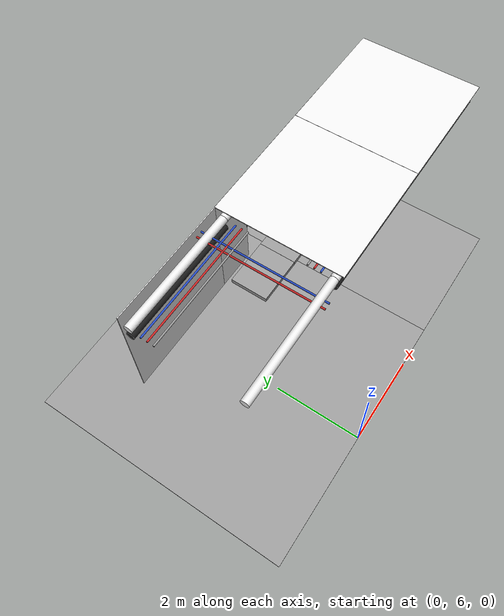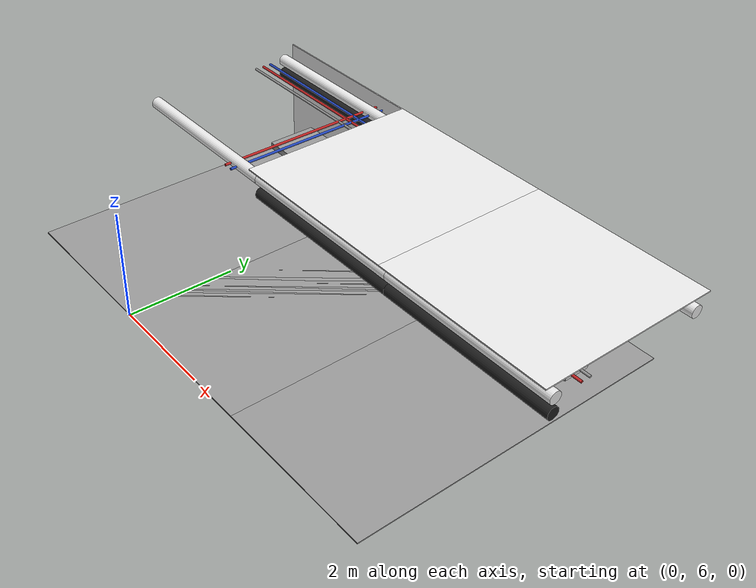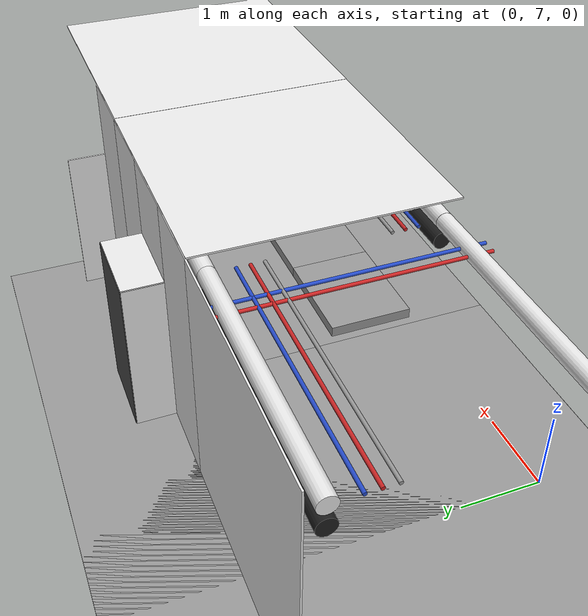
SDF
<sdf version="1.6">
 <world name="default">
  <model name="wall_front_0_3_0_2">
   <static>1</static>
   <pose>0.0 10.5 1.5 0.0 0.0 0.0</pose>
   <link name="link">
    <collision name="collision"><geometry><box><size>3.0 0.02 3.0</size></box></geometry></collision>
    <visual name="visual">
     <material>
      <script><name>Gazebo/White</name><uri>file://media/materials/scripts/gazebo.material</uri></script>
     </material>
     <geometry><box><size>3.0 0.02 3.0</size></box></geometry>
    </visual>
   </link>
  </model>
  <model name="ceiling_1_0_3_1_2">
   <pose>1.0 9.0 2.55 0.0 0.0 1.57</pose>
   <link name="link_1">
    <visual name="visual">
     <geometry><box><size>0.8 1 0.1</size></box></geometry>
     <material>
      <script><uri>file://media/materials/scripts/gazebo.material</uri><name>Gazebo/Grey</name></script>
     </material>
    </visual>
    <collision name="collision"><geometry><box><size>0.8 1 0.1</size></box></geometry></collision>
   </link>
   <static>1</static>
  </model>
  <model name="red_pipe_right_0_3_0_2">
   <static>1</static>
   <pose>0.0 9.0 2.76 0.0 0.0 0.0</pose>
   <link name="link_0">
    <visual name="visual">
     <pose>0.85 0 0 1.57 0 0</pose>
     <geometry><cylinder><radius>0.02</radius><length>3.0</length></cylinder></geometry>
     <material>
      <script><uri>file://media/materials/scripts/gazebo.material</uri><name>Gazebo/Red</name></script>
     </material>
    </visual>
    <collision name="collision">
     <pose>0.85 0 0 1.57 0 0</pose>
     <geometry><cylinder><radius>0.02</radius><length>3.0</length></cylinder></geometry>
    </collision>
   </link>
  </model>
  <model name="blue_pipe_right_0_3_0_2">
   <static>1</static>
   <pose>0.0 9.0 2.76 0.0 0.0 0.0</pose>
   <link name="link_0">
    <visual name="visual">
     <pose>1 0 0 1.57 0 0</pose>
     <geometry><cylinder><radius>0.02</radius><length>3.0</length></cylinder></geometry>
     <material>
      <script><uri>file://media/materials/scripts/gazebo.material</uri><name>Gazebo/Blue</name></script>
     </material>
    </visual>
    <collision name="collision">
     <pose>1 0 0 1.57 0 0</pose>
     <geometry><cylinder><radius>0.02</radius><length>3.0</length></cylinder></geometry>
    </collision>
   </link>
  </model>
  <model name="white_pipe_left_1_0_3_0_2">
   <static>1</static>
   <pose>0.0 9.0 2.76 0.0 0.0 1.57</pose>
   <link name="link_0">
    <visual name="visual">
     <pose>-1.3 0 0 1.57 0 0</pose>
     <geometry><cylinder><radius>0.1</radius><length>3.0</length></cylinder></geometry>
     <material>
      <script><uri>file://media/materials/scripts/gazebo.material</uri><name>Gazebo/White</name></script>
     </material>
    </visual>
    <collision name="collision">
     <pose>-1.3 0 0 1.57 0 0</pose>
     <geometry><cylinder><radius>0.1</radius><length>3.0</length></cylinder></geometry>
    </collision>
   </link>
  </model>
  <model name="white_pipe_right_1_0_3_0_2">
   <static>1</static>
   <pose>0.0 9.0 2.76 0.0 0.0 1.57</pose>
   <link name="link_0">
    <visual name="visual">
     <pose>1.3 0 0 1.57 0 0</pose>
     <geometry><cylinder><radius>0.1</radius><length>3.0</length></cylinder></geometry>
     <material>
      <script><uri>file://media/materials/scripts/gazebo.material</uri><name>Gazebo/White</name></script>
     </material>
    </visual>
    <collision name="collision">
     <pose>1.3 0 0 1.57 0 0</pose>
     <geometry><cylinder><radius>0.1</radius><length>3.0</length></cylinder></geometry>
    </collision>
   </link>
  </model>
  <model name="black_pipe_right_1_0_3_0_2">
   <static>1</static>
   <pose>0.0 9.0 2.76 0.0 0.0 1.57</pose>
   <link name="link_0">
    <visual name="visual">
     <pose>1.3 0 -0.25 1.57 0 0</pose>
     <geometry><cylinder><radius>0.1</radius><length>3.0</length></cylinder></geometry>
     <material>
      <script><uri>file://media/materials/scripts/gazebo.material</uri><name>Gazebo/Black</name></script>
     </material>
    </visual>
    <collision name="collision">
     <pose>1.3 0 -0.25 1.57 0 0</pose>
     <geometry><cylinder><radius>0.1</radius><length>3.0</length></cylinder></geometry>
    </collision>
   </link>
  </model>
  <model name="grey_pipe_right_1_0_3_0_2">
   <static>1</static>
   <pose>0.0 9.0 2.76 0.0 0.0 1.57</pose>
   <link name="link_0">
    <visual name="visual">
     <pose>0.7 0 0 1.57 0 0</pose>
     <geometry><cylinder><radius>0.02</radius><length>3.0</length></cylinder></geometry>
     <material>
      <script><uri>file://media/materials/scripts/gazebo.material</uri><name>Gazebo/Grey</name></script>
     </material>
    </visual>
    <collision name="collision">
     <pose>0.7 0 0 1.57 0 0</pose>
     <geometry><cylinder><radius>0.02</radius><length>3.0</length></cylinder></geometry>
    </collision>
   </link>
  </model>
  <model name="red_pipe_right_1_0_3_0_2">
   <static>1</static>
   <pose>0.0 9.0 2.76 0.0 0.0 1.57</pose>
   <link name="link_0">
    <visual name="visual">
     <pose>0.85 0 0 1.57 0 0</pose>
     <geometry><cylinder><radius>0.02</radius><length>3.0</length></cylinder></geometry>
     <material>
      <script><uri>file://media/materials/scripts/gazebo.material</uri><name>Gazebo/Red</name></script>
     </material>
    </visual>
    <collision name="collision">
     <pose>0.85 0 0 1.57 0 0</pose>
     <geometry><cylinder><radius>0.02</radius><length>3.0</length></cylinder></geometry>
    </collision>
   </link>
  </model>
  <model name="blue_pipe_right_1_0_3_0_2">
   <static>1</static>
   <pose>0.0 9.0 2.76 0.0 0.0 1.57</pose>
   <link name="link_0">
    <visual name="visual">
     <pose>1 0 0 1.57 0 0</pose>
     <geometry><cylinder><radius>0.02</radius><length>3.0</length></cylinder></geometry>
     <material>
      <script><uri>file://media/materials/scripts/gazebo.material</uri><name>Gazebo/Blue</name></script>
     </material>
    </visual>
    <collision name="collision">
     <pose>1 0 0 1.57 0 0</pose>
     <geometry><cylinder><radius>0.02</radius><length>3.0</length></cylinder></geometry>
    </collision>
   </link>
  </model>
  <model name="wall_bottom_0_3_0_2">
   <static>1</static>
   <pose>0.0 9.0 0.0 0.0 0.0 0.0</pose>
   <link name="link">
    <collision name="collision"><geometry><box><size>6.0 6.0 0.02</size></box></geometry></collision>
    <visual name="visual">
     <material>
      <script><name>Gazebo/Grey</name><uri>file://media/materials/scripts/gazebo.material</uri></script>
     </material>
     <geometry><box><size>6.0 6.0 0.02</size></box></geometry>
    </visual>
   </link>
  </model>
  <model name="wall_top_1_3_0_1">
   <static>1</static>
   <pose>3.0 9.0 3.0 1.57 0.0 -1.57</pose>
   <link name="link">
    <collision name="collision"><geometry><box><size>3.0 0.02 3.0</size></box></geometry></collision>
    <visual name="visual">
     <material>
      <script><name>Gazebo/White</name><uri>file://media/materials/scripts/gazebo.material</uri></script>
     </material>
     <geometry><box><size>3.0 0.02 3.0</size></box></geometry>
    </visual>
   </link>
  </model>
  <model name="ceiling_1_1_3_0_1">
   <pose>3.0 9.0 2.55 0.0 0.0 -1.57</pose>
   <link name="link_1">
    <visual name="visual">
     <geometry><box><size>0.8 1 0.1</size></box></geometry>
     <material>
      <script><uri>file://media/materials/scripts/gazebo.material</uri><name>Gazebo/Grey</name></script>
     </material>
    </visual>
    <collision name="collision"><geometry><box><size>0.8 1 0.1</size></box></geometry></collision>
   </link>
   <static>1</static>
  </model>
  <model name="ceiling_1_1_3_1_1">
   <pose>2.0 9.0 2.55 0.0 0.0 -1.57</pose>
   <link name="link_1">
    <visual name="visual">
     <geometry><box><size>0.8 1 0.1</size></box></geometry>
     <material>
      <script><uri>file://media/materials/scripts/gazebo.material</uri><name>Gazebo/Grey</name></script>
     </material>
    </visual>
    <collision name="collision"><geometry><box><size>0.8 1 0.1</size></box></geometry></collision>
   </link>
   <static>1</static>
  </model>
  <model name="ceiling_1_1_3_2_1">
   <pose>4.0 9.0 2.55 0.0 0.0 -1.57</pose>
   <link name="link_1">
    <visual name="visual">
     <geometry><box><size>0.8 1 0.1</size></box></geometry>
     <material>
      <script><uri>file://media/materials/scripts/gazebo.material</uri><name>Gazebo/Grey</name></script>
     </material>
    </visual>
    <collision name="collision"><geometry><box><size>0.8 1 0.1</size></box></geometry></collision>
   </link>
   <static>1</static>
  </model>
  <model name="white_pipe_left_1_3_0_1">
   <static>1</static>
   <pose>3.0 9.0 2.76 0.0 0.0 -1.57</pose>
   <link name="link_0">
    <visual name="visual">
     <pose>-1.3 0 0 1.57 0 0</pose>
     <geometry><cylinder><radius>0.1</radius><length>3.0</length></cylinder></geometry>
     <material>
      <script><uri>file://media/materials/scripts/gazebo.material</uri><name>Gazebo/White</name></script>
     </material>
    </visual>
    <collision name="collision">
     <pose>-1.3 0 0 1.57 0 0</pose>
     <geometry><cylinder><radius>0.1</radius><length>3.0</length></cylinder></geometry>
    </collision>
   </link>
  </model>
  <model name="white_pipe_right_1_3_0_1">
   <static>1</static>
   <pose>3.0 9.0 2.76 0.0 0.0 -1.57</pose>
   <link name="link_0">
    <visual name="visual">
     <pose>1.3 0 0 1.57 0 0</pose>
     <geometry><cylinder><radius>0.1</radius><length>3.0</length></cylinder></geometry>
     <material>
      <script><uri>file://media/materials/scripts/gazebo.material</uri><name>Gazebo/White</name></script>
     </material>
    </visual>
    <collision name="collision">
     <pose>1.3 0 0 1.57 0 0</pose>
     <geometry><cylinder><radius>0.1</radius><length>3.0</length></cylinder></geometry>
    </collision>
   </link>
  </model>
  <model name="black_pipe_right_1_3_0_1">
   <static>1</static>
   <pose>3.0 9.0 2.76 0.0 0.0 -1.57</pose>
   <link name="link_0">
    <visual name="visual">
     <pose>1.3 0 -0.25 1.57 0 0</pose>
     <geometry><cylinder><radius>0.1</radius><length>3.0</length></cylinder></geometry>
     <material>
      <script><uri>file://media/materials/scripts/gazebo.material</uri><name>Gazebo/Black</name></script>
     </material>
    </visual>
    <collision name="collision">
     <pose>1.3 0 -0.25 1.57 0 0</pose>
     <geometry><cylinder><radius>0.1</radius><length>3.0</length></cylinder></geometry>
    </collision>
   </link>
  </model>
  <model name="grey_pipe_right_1_3_0_1">
   <static>1</static>
   <pose>3.0 9.0 2.76 0.0 0.0 -1.57</pose>
   <link name="link_0">
    <visual name="visual">
     <pose>0.7 0 0 1.57 0 0</pose>
     <geometry><cylinder><radius>0.02</radius><length>3.0</length></cylinder></geometry>
     <material>
      <script><uri>file://media/materials/scripts/gazebo.material</uri><name>Gazebo/Grey</name></script>
     </material>
    </visual>
    <collision name="collision">
     <pose>0.7 0 0 1.57 0 0</pose>
     <geometry><cylinder><radius>0.02</radius><length>3.0</length></cylinder></geometry>
    </collision>
   </link>
  </model>
  <model name="red_pipe_right_1_3_0_1">
   <static>1</static>
   <pose>3.0 9.0 2.76 0.0 0.0 -1.57</pose>
   <link name="link_0">
    <visual name="visual">
     <pose>0.85 0 0 1.57 0 0</pose>
     <geometry><cylinder><radius>0.02</radius><length>3.0</length></cylinder></geometry>
     <material>
      <script><uri>file://media/materials/scripts/gazebo.material</uri><name>Gazebo/Red</name></script>
     </material>
    </visual>
    <collision name="collision">
     <pose>0.85 0 0 1.57 0 0</pose>
     <geometry><cylinder><radius>0.02</radius><length>3.0</length></cylinder></geometry>
    </collision>
   </link>
  </model>
  <model name="blue_pipe_right_1_3_0_1">
   <static>1</static>
   <pose>3.0 9.0 2.76 0.0 0.0 -1.57</pose>
   <link name="link_0">
    <visual name="visual">
     <pose>1 0 0 1.57 0 0</pose>
     <geometry><cylinder><radius>0.02</radius><length>3.0</length></cylinder></geometry>
     <material>
      <script><uri>file://media/materials/scripts/gazebo.material</uri><name>Gazebo/Blue</name></script>
     </material>
    </visual>
    <collision name="collision">
     <pose>1 0 0 1.57 0 0</pose>
     <geometry><cylinder><radius>0.02</radius><length>3.0</length></cylinder></geometry>
    </collision>
   </link>
  </model>
  <model name="wall_left_front_left_1_3_0_1">
   <static>1</static>
   <pose>4.0 10.5 1.5 0.0 0.0 0.0</pose>
   <link name="link">
    <collision name="collision"><geometry><box><size>1.0 0.02 3.0</size></box></geometry></collision>
    <visual name="visual">
     <material>
      <script><name>Gazebo/White</name><uri>file://media/materials/scripts/gazebo.material</uri></script>
     </material>
     <geometry><box><size>1.0 0.02 3.0</size></box></geometry>
    </visual>
   </link>
  </model>
  <model name="wall_left_front_right_1_3_0_1">
   <static>1</static>
   <pose>2.0 10.5 1.5 0.0 0.0 0.0</pose>
   <link name="link">
    <collision name="collision"><geometry><box><size>1.0 0.02 3.0</size></box></geometry></collision>
    <visual name="visual">
     <material>
      <script><name>Gazebo/White</name><uri>file://media/materials/scripts/gazebo.material</uri></script>
     </material>
     <geometry><box><size>1.0 0.02 3.0</size></box></geometry>
    </visual>
   </link>
  </model>
  <model name="wall_left_front_up_1_3_0_1">
   <static>1</static>
   <pose>3.0 10.5 2.5 0.0 0.0 0.0</pose>
   <link name="link">
    <collision name="collision"><geometry><box><size>1.0 0.02 1.0</size></box></geometry></collision>
    <visual name="visual">
     <material>
      <script><name>Gazebo/White</name><uri>file://media/materials/scripts/gazebo.material</uri></script>
     </material>
     <geometry><box><size>1.0 0.02 1.0</size></box></geometry>
    </visual>
   </link>
  </model>
  <model name="wall_left_inside_back_1_3_0_1">
   <static>1</static>
   <pose>3.0 11.0 1.0 0.0 0.0 0.0</pose>
   <link name="link">
    <collision name="collision"><geometry><box><size>1 0.02 2</size></box></geometry></collision>
    <visual name="visual">
     <material>
      <script><name>Gazebo/DarkGrey</name><uri>file://media/materials/scripts/gazebo.material</uri></script>
     </material>
     <geometry><box><size>1 0.02 2</size></box></geometry>
    </visual>
   </link>
  </model>
  <model name="wall_left_inside_left_1_3_0_1">
   <static>1</static>
   <pose>3.5 10.75 1.0 0.0 0.0 -1.57</pose>
   <link name="link">
    <collision name="collision"><geometry><box><size>0.5 0.02 2</size></box></geometry></collision>
    <visual name="visual">
     <material>
      <script><name>Gazebo/White</name><uri>file://media/materials/scripts/gazebo.material</uri></script>
     </material>
     <geometry><box><size>0.5 0.02 2</size></box></geometry>
    </visual>
   </link>
  </model>
  <model name="wall_left_inside_right_1_3_0_1">
   <static>1</static>
   <pose>2.5 10.75 1.0 0.0 0.0 -1.57</pose>
   <link name="link">
    <collision name="collision"><geometry><box><size>0.5 0.02 2</size></box></geometry></collision>
    <visual name="visual">
     <material>
      <script><name>Gazebo/White</name><uri>file://media/materials/scripts/gazebo.material</uri></script>
     </material>
     <geometry><box><size>0.5 0.02 2</size></box></geometry>
    </visual>
   </link>
  </model>
  <model name="wall_left_inside_top_1_3_0_1">
   <static>1</static>
   <pose>3.0 10.75 2.0 1.57 0.0 0.0</pose>
   <link name="link">
    <collision name="collision"><geometry><box><size>1 0.02 0.5</size></box></geometry></collision>
    <visual name="visual">
     <material>
      <script><name>Gazebo/White</name><uri>file://media/materials/scripts/gazebo.material</uri></script>
     </material>
     <geometry><box><size>1 0.02 0.5</size></box></geometry>
    </visual>
   </link>
  </model>
  <model name="wall_bottom_1_3_0_1">
   <static>1</static>
   <pose>3.0 9.0 0.0 0.0 0.0 -1.57</pose>
   <link name="link">
    <collision name="collision"><geometry><box><size>6.0 6.0 0.02</size></box></geometry></collision>
    <visual name="visual">
     <material>
      <script><name>Gazebo/Grey</name><uri>file://media/materials/scripts/gazebo.material</uri></script>
     </material>
     <geometry><box><size>6.0 6.0 0.02</size></box></geometry>
    </visual>
   </link>
  </model>
  <model name="wall_top_2_3_0_1">
   <static>1</static>
   <pose>6.0 9.0 3.0 1.57 0.0 -1.57</pose>
   <link name="link">
    <collision name="collision"><geometry><box><size>3.0 0.02 3.0</size></box></geometry></collision>
    <visual name="visual">
     <material>
      <script><name>Gazebo/White</name><uri>file://media/materials/scripts/gazebo.material</uri></script>
     </material>
     <geometry><box><size>3.0 0.02 3.0</size></box></geometry>
    </visual>
   </link>
  </model>
  <model name="ceiling_1_2_3_0_1">
   <pose>6.0 9.0 2.55 0.0 0.0 -1.57</pose>
   <link name="link_1">
    <visual name="visual">
     <geometry><box><size>0.8 1 0.1</size></box></geometry>
     <material>
      <script><uri>file://media/materials/scripts/gazebo.material</uri><name>Gazebo/Grey</name></script>
     </material>
    </visual>
    <collision name="collision"><geometry><box><size>0.8 1 0.1</size></box></geometry></collision>
   </link>
   <static>1</static>
  </model>
  <model name="ceiling_1_2_3_1_1">
   <pose>5.0 9.0 2.55 0.0 0.0 -1.57</pose>
   <link name="link_1">
    <visual name="visual">
     <geometry><box><size>0.8 1 0.1</size></box></geometry>
     <material>
      <script><uri>file://media/materials/scripts/gazebo.material</uri><name>Gazebo/Grey</name></script>
     </material>
    </visual>
    <collision name="collision"><geometry><box><size>0.8 1 0.1</size></box></geometry></collision>
   </link>
   <static>1</static>
  </model>
  <model name="white_pipe_left_2_3_0_1">
   <static>1</static>
   <pose>6.0 9.0 2.76 0.0 0.0 -1.57</pose>
   <link name="link_0">
    <visual name="visual">
     <pose>-1.3 0 0 1.57 0 0</pose>
     <geometry><cylinder><radius>0.1</radius><length>3.0</length></cylinder></geometry>
     <material>
      <script><uri>file://media/materials/scripts/gazebo.material</uri><name>Gazebo/White</name></script>
     </material>
    </visual>
    <collision name="collision">
     <pose>-1.3 0 0 1.57 0 0</pose>
     <geometry><cylinder><radius>0.1</radius><length>3.0</length></cylinder></geometry>
    </collision>
   </link>
  </model>
  <model name="white_pipe_right_2_3_0_1">
   <static>1</static>
   <pose>6.0 9.0 2.76 0.0 0.0 -1.57</pose>
   <link name="link_0">
    <visual name="visual">
     <pose>1.3 0 0 1.57 0 0</pose>
     <geometry><cylinder><radius>0.1</radius><length>3.0</length></cylinder></geometry>
     <material>
      <script><uri>file://media/materials/scripts/gazebo.material</uri><name>Gazebo/White</name></script>
     </material>
    </visual>
    <collision name="collision">
     <pose>1.3 0 0 1.57 0 0</pose>
     <geometry><cylinder><radius>0.1</radius><length>3.0</length></cylinder></geometry>
    </collision>
   </link>
  </model>
  <model name="black_pipe_right_2_3_0_1">
   <static>1</static>
   <pose>6.0 9.0 2.76 0.0 0.0 -1.57</pose>
   <link name="link_0">
    <visual name="visual">
     <pose>1.3 0 -0.25 1.57 0 0</pose>
     <geometry><cylinder><radius>0.1</radius><length>3.0</length></cylinder></geometry>
     <material>
      <script><uri>file://media/materials/scripts/gazebo.material</uri><name>Gazebo/Black</name></script>
     </material>
    </visual>
    <collision name="collision">
     <pose>1.3 0 -0.25 1.57 0 0</pose>
     <geometry><cylinder><radius>0.1</radius><length>3.0</length></cylinder></geometry>
    </collision>
   </link>
  </model>
  <model name="grey_pipe_right_2_3_0_1">
   <static>1</static>
   <pose>6.0 9.0 2.76 0.0 0.0 -1.57</pose>
   <link name="link_0">
    <visual name="visual">
     <pose>0.7 0 0 1.57 0 0</pose>
     <geometry><cylinder><radius>0.02</radius><length>3.0</length></cylinder></geometry>
     <material>
      <script><uri>file://media/materials/scripts/gazebo.material</uri><name>Gazebo/Grey</name></script>
     </material>
    </visual>
    <collision name="collision">
     <pose>0.7 0 0 1.57 0 0</pose>
     <geometry><cylinder><radius>0.02</radius><length>3.0</length></cylinder></geometry>
    </collision>
   </link>
  </model>
  <model name="red_pipe_right_2_3_0_1">
   <static>1</static>
   <pose>6.0 9.0 2.76 0.0 0.0 -1.57</pose>
   <link name="link_0">
    <visual name="visual">
     <pose>0.85 0 0 1.57 0 0</pose>
     <geometry><cylinder><radius>0.02</radius><length>3.0</length></cylinder></geometry>
     <material>
      <script><uri>file://media/materials/scripts/gazebo.material</uri><name>Gazebo/Red</name></script>
     </material>
    </visual>
    <collision name="collision">
     <pose>0.85 0 0 1.57 0 0</pose>
     <geometry><cylinder><radius>0.02</radius><length>3.0</length></cylinder></geometry>
    </collision>
   </link>
  </model>
  <model name="wall_left_front_right_2_3_0_1">
   <static>1</static>
   <pose>5.0 10.5 1.5 0.0 0.0 0.0</pose>
   <link name="link">
    <collision name="collision"><geometry><box><size>1.0 0.02 3.0</size></box></geometry></collision>
    <visual name="visual">
     <material>
      <script><name>Gazebo/White</name><uri>file://media/materials/scripts/gazebo.material</uri></script>
     </material>
     <geometry><box><size>1.0 0.02 3.0</size></box></geometry>
    </visual>
   </link>
  </model>
  <model name="wall_left_inside_right_2_3_0_1">
   <static>1</static>
   <pose>5.5 10.75 1.0 0.0 0.0 -1.57</pose>
   <link name="link">
    <collision name="collision"><geometry><box><size>0.5 0.02 2</size></box></geometry></collision>
    <visual name="visual">
     <material>
      <script><name>Gazebo/White</name><uri>file://media/materials/scripts/gazebo.material</uri></script>
     </material>
     <geometry><box><size>0.5 0.02 2</size></box></geometry>
    </visual>
   </link>
  </model>
 </world>
</sdf>
